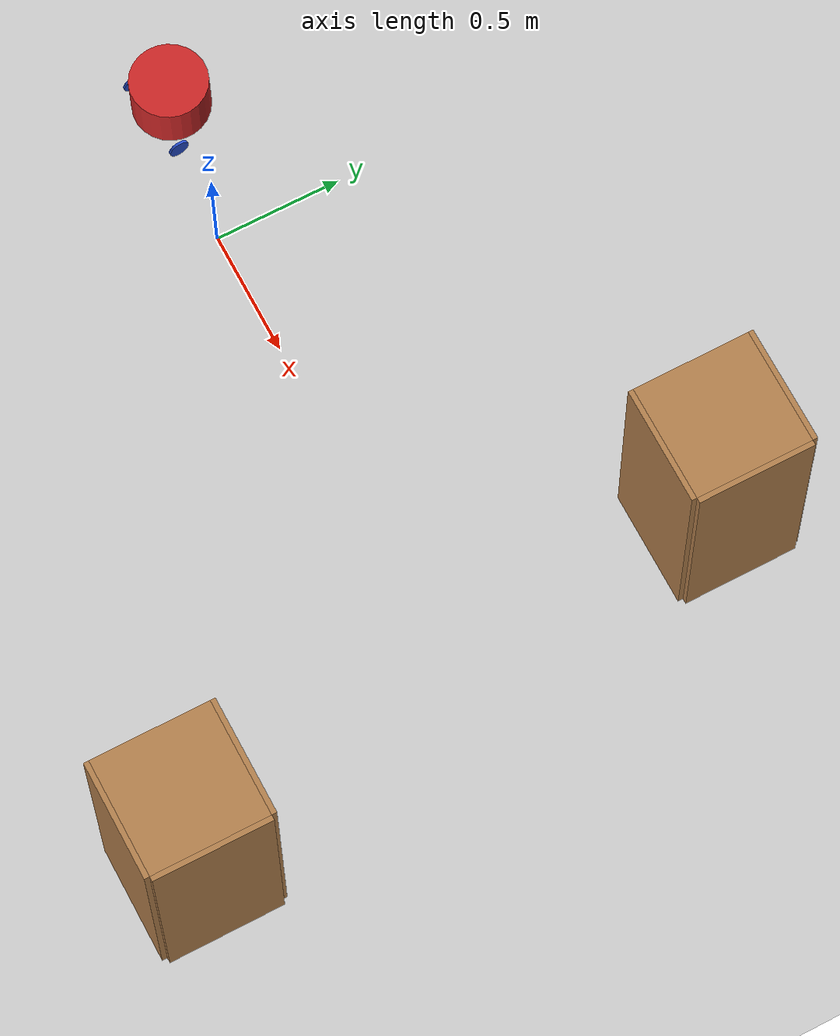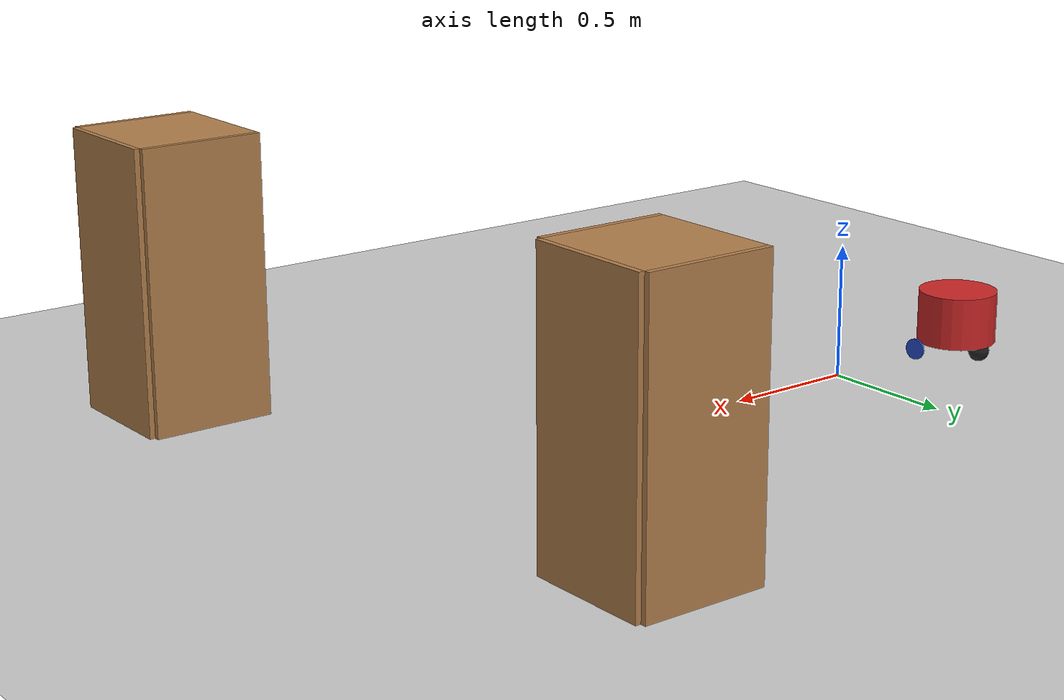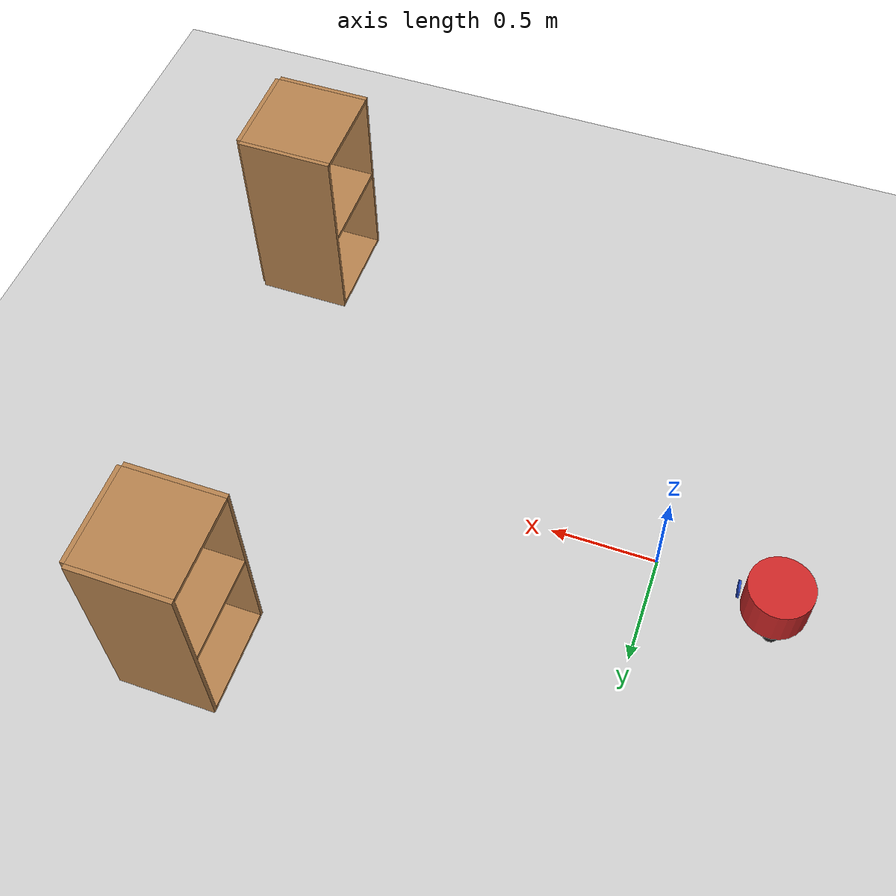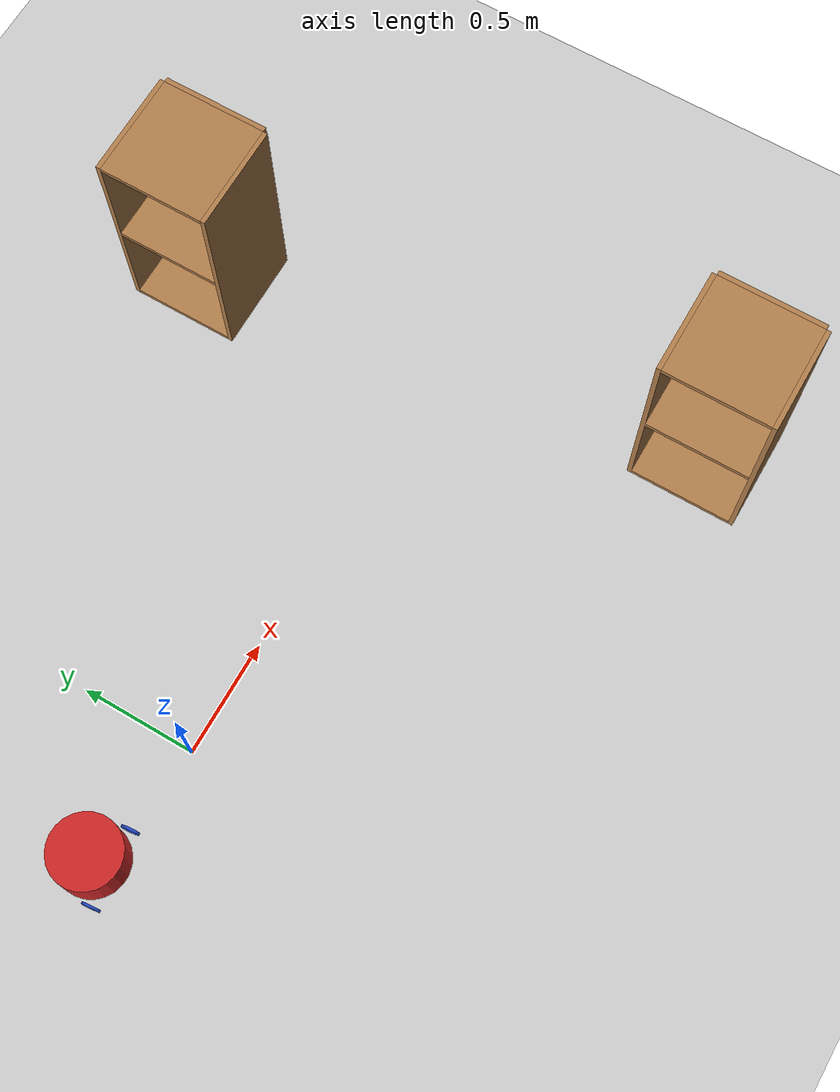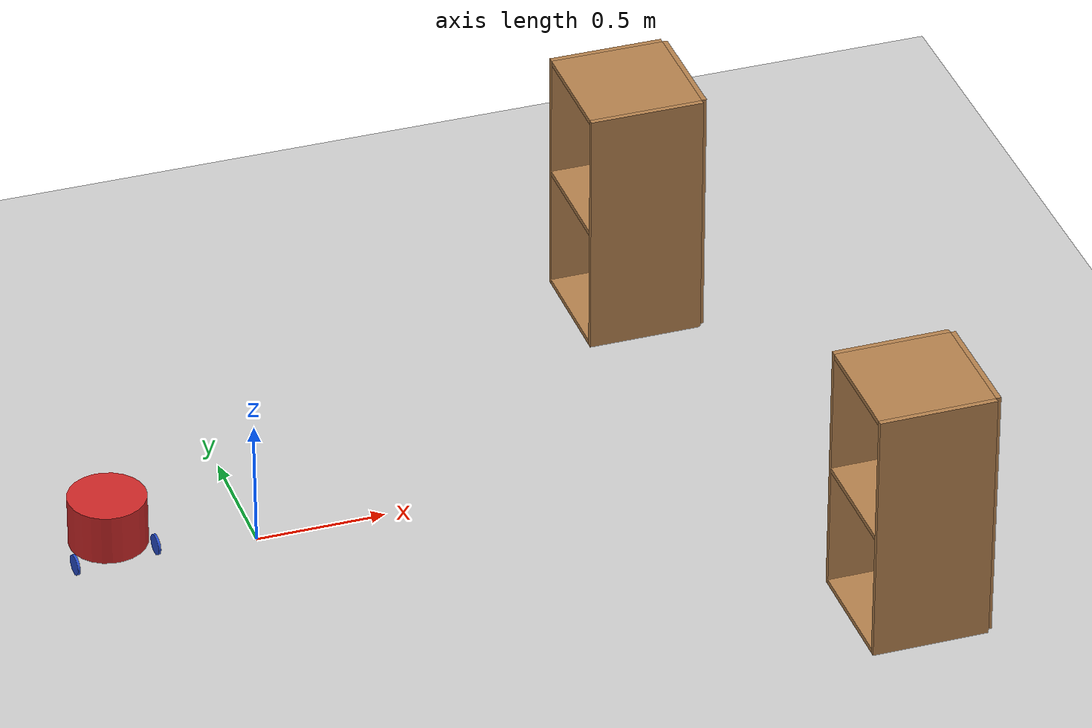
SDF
<sdf version="1.7">
 <world name="default">
  <light name="sun" type="directional">
   <pose>0 0 10 0 -0 0</pose>
   <diffuse>0.8 0.8 0.8 1</diffuse>
   <specular>0.2 0.2 0.2 1</specular>
   <attenuation>
    <range>1000</range>
    <constant>0.9</constant>
    <linear>0.01</linear>
    <quadratic>0.001</quadratic>
   </attenuation>
   <direction>-0.5 0.1 -0.9</direction>
   <spot><inner_angle>0</inner_angle><outer_angle>0</outer_angle><falloff>0</falloff></spot>
  </light>
  <model name="ground_plane">
   <static>1</static>
   <link name="link">
    <collision name="collision">
     <geometry><plane><normal>0 0 1</normal><size>100 100</size></plane></geometry>
     <surface>
      <contact><collide_bitmask>65535</collide_bitmask></contact>
      <friction><ode><mu>100</mu><mu2>50</mu2></ode></friction>
     </surface>
    </collision>
    <visual name="visual">
     <cast_shadows>0</cast_shadows>
     <geometry><plane><normal>0 0 1</normal><size>100 100</size></plane></geometry>
     <material>
      <script><uri>file://media/materials/scripts/gazebo.material</uri><name>Gazebo/Grey</name></script>
     </material>
    </visual>
   </link>
  </model>
  <gravity>0 0 -9.8</gravity>
  <magnetic_field>6e-06 2.3e-05 -4.2e-05</magnetic_field>
  <atmosphere type="adiabatic"/>
  <physics type="ode">
   <max_step_size>0.001</max_step_size>
   <real_time_factor>1</real_time_factor>
   <real_time_update_rate>1000</real_time_update_rate>
  </physics>
  <scene><ambient>0.4 0.4 0.4 1</ambient><background>0.7 0.7 0.7 1</background><shadows>1</shadows></scene>
  <audio><device>default</device></audio>
  <spherical_coordinates>
   <surface_model>EARTH_WGS84</surface_model>
   <latitude_deg>0</latitude_deg>
   <longitude_deg>0</longitude_deg>
   <elevation>0</elevation>
   <heading_deg>0</heading_deg>
  </spherical_coordinates>
  <model name="my_bot">
   <link name="base_link">
    <inertial>
     <pose>0.04 0 0.071667 0 -0 0</pose>
     <mass>0.3</mass>
     <inertia>
      <ixx>0.00333733</ixx>
      <ixy>0</ixy>
      <ixz>0.00063</ixz>
      <iyy>0.00677733</iyy>
      <iyz>0</iyz>
      <izz>0.004754</izz>
     </inertia>
    </inertial>
    <collision name="base_link_fixed_joint_lump__caster_wheel_collision">
     <pose>0.18 0 0 0 -0 0</pose>
     <geometry><sphere><radius>0.04</radius></sphere></geometry>
     <surface><friction><ode><mu>0.001</mu><mu2>0.001</mu2></ode></friction></surface>
    </collision>
    <collision name="base_link_fixed_joint_lump__chassis_collision_1">
     <pose>0.07 0 0.12 0 -0 0</pose>
     <geometry><cylinder><length>0.2</length><radius>0.15</radius></cylinder></geometry>
    </collision>
    <collision name="base_link_fixed_joint_lump__laser_frame_collision_2">
     <pose>0.02 0 0.195 0 -0 0</pose>
     <geometry><cylinder><length>0.04</length><radius>0.05</radius></cylinder></geometry>
    </collision>
    <visual name="base_link_fixed_joint_lump__caster_wheel_visual">
     <pose>0.18 0 0 0 -0 0</pose>
     <geometry><sphere><radius>0.04</radius></sphere></geometry>
     <material>
      <script><name>Gazebo/Black</name><uri>file://media/materials/scripts/gazebo.material</uri></script>
     </material>
    </visual>
    <visual name="base_link_fixed_joint_lump__chassis_visual_1">
     <pose>0.07 0 0.12 0 -0 0</pose>
     <geometry><cylinder><length>0.2</length><radius>0.15</radius></cylinder></geometry>
     <material>
      <script><name>Gazebo/Red</name><uri>file://media/materials/scripts/gazebo.material</uri></script>
     </material>
    </visual>
    <visual name="base_link_fixed_joint_lump__laser_frame_visual_2">
     <pose>0.02 0 0.195 0 -0 0</pose>
     <geometry><cylinder><length>0.04</length><radius>0.05</radius></cylinder></geometry>
     <material>
      <script><name>Gazebo/Red</name><uri>file://media/materials/scripts/gazebo.material</uri></script>
     </material>
    </visual>
    <sensor name="laser" type="ray">
     <visualize>1</visualize>
     <update_rate>10</update_rate>
     <ray>
      <scan>
       <horizontal>
        <samples>360</samples>
        <min_angle>-3.14</min_angle>
        <max_angle>3.14</max_angle>
        <resolution>1</resolution>
       </horizontal>
       <vertical><samples>1</samples><min_angle>0</min_angle><max_angle>0</max_angle></vertical>
      </scan>
      <range><min>0.3</min><max>12</max></range>
     </ray>
     <plugin name="laser_controller" filename="libgazebo_ros_ray_sensor.so">
      <ros><argument>~/out:=scan</argument></ros>
      <output_type>sensor_msgs/LaserScan</output_type>
      <frame_name>laser_frame</frame_name>
     </plugin>
     <pose>0.02 0 0.195 0 -0 0</pose>
    </sensor>
   </link>
   <joint name="left_wheel_joint" type="revolute">
    <pose relative_to="base_link">0 0.16 0 -1.5708 0 0</pose>
    <parent>base_link</parent>
    <child>left_wheel</child>
    <axis>
     <xyz>0 0 1</xyz>
     <limit><lower>-1e+16</lower><upper>1e+16</upper></limit>
     <dynamics><spring_reference>0</spring_reference><spring_stiffness>0</spring_stiffness></dynamics>
    </axis>
   </joint>
   <link name="left_wheel">
    <pose relative_to="left_wheel_joint">0 0 0 0 -0 0</pose>
    <inertial>
     <mass>0.1</mass>
     <inertia>
      <ixx>4.08333e-05</ixx>
      <ixy>0</ixy>
      <ixz>0</ixz>
      <iyy>4.08333e-05</iyy>
      <iyz>0</iyz>
      <izz>8e-05</izz>
     </inertia>
    </inertial>
    <collision name="left_wheel_collision">
     <geometry><cylinder><length>0.01</length><radius>0.04</radius></cylinder></geometry>
    </collision>
    <visual name="left_wheel_visual">
     <geometry><cylinder><length>0.01</length><radius>0.04</radius></cylinder></geometry>
     <material>
      <script><name>Gazebo/Blue</name><uri>file://media/materials/scripts/gazebo.material</uri></script>
     </material>
    </visual>
   </link>
   <joint name="right_wheel_joint" type="revolute">
    <pose relative_to="base_link">0 -0.16 0 1.5708 -0 0</pose>
    <parent>base_link</parent>
    <child>right_wheel</child>
    <axis>
     <xyz>0 0 -1</xyz>
     <limit><lower>-1e+16</lower><upper>1e+16</upper></limit>
     <dynamics><spring_reference>0</spring_reference><spring_stiffness>0</spring_stiffness></dynamics>
    </axis>
   </joint>
   <link name="right_wheel">
    <pose relative_to="right_wheel_joint">0 0 0 0 -0 0</pose>
    <inertial>
     <mass>0.1</mass>
     <inertia>
      <ixx>4.08333e-05</ixx>
      <ixy>0</ixy>
      <ixz>0</ixz>
      <iyy>4.08333e-05</iyy>
      <iyz>0</iyz>
      <izz>8e-05</izz>
     </inertia>
    </inertial>
    <collision name="right_wheel_collision">
     <geometry><cylinder><length>0.01</length><radius>0.04</radius></cylinder></geometry>
    </collision>
    <visual name="right_wheel_visual">
     <geometry><cylinder><length>0.01</length><radius>0.04</radius></cylinder></geometry>
     <material>
      <script><name>Gazebo/Blue</name><uri>file://media/materials/scripts/gazebo.material</uri></script>
     </material>
    </visual>
   </link>
   <static>0</static>
   <plugin name="gazebo_ros2_control" filename="libgazebo_ros2_control.so">
    <parameters>/home/robot/dev_ws/install/rsk_bot/share/rsk_bot/config/my_controllers.yaml</parameters>
    <parameters>/home/robot/dev_ws/install/rsk_bot/share/rsk_bot/config/gaz_ros2_ctl_use_sim.yaml</parameters>
   </plugin>
   <pose>-0.538239 0.017235 0.04 0 -0 1.66882</pose>
  </model>
  <model name="cabinet">
   <static>1</static>
   <link name="cabinet_bottom_plate">
    <inertial>
     <pose>0 0 -1 0 -0 0</pose>
     <inertia><ixx>2.05</ixx><ixy>0</ixy><ixz>0</ixz><iyy>2.05</iyy><iyz>0</iyz><izz>2.05</izz></inertia>
     <mass>25</mass>
    </inertial>
    <collision name="cabinet_bottom_plate_geom">
     <pose>0 0 0.01 0 -0 0</pose>
     <geometry><box><size>0.45 0.45 0.02</size></box></geometry>
    </collision>
    <visual name="cabinet_bottom_plate_geom_visual">
     <pose>0 0 0.01 0 -0 0</pose>
     <geometry><box><size>0.45 0.45 0.02</size></box></geometry>
     <material>
      <script><uri>file://media/materials/scripts/gazebo.material</uri><name>Gazebo/Wood</name></script>
     </material>
    </visual>
    <collision name="cabinet_bottom_plate_geom_cabinet_back_plate">
     <pose>0.235 0 0.51 0 -0 0</pose>
     <geometry><box><size>0.02 0.45 1.02</size></box></geometry>
    </collision>
    <visual name="cabinet_bottom_plate_geom_cabinet_back_plate_visual">
     <pose>0.235 0 0.51 0 -0 0</pose>
     <geometry><box><size>0.02 0.45 1.02</size></box></geometry>
     <material>
      <script><uri>file://media/materials/scripts/gazebo.material</uri><name>Gazebo/Wood</name></script>
     </material>
    </visual>
    <collision name="cabinet_bottom_plate_geom_cabinet_left_plate">
     <pose>0 0.235 0.51 0 -0 0</pose>
     <geometry><box><size>0.45 0.02 1.02</size></box></geometry>
    </collision>
    <visual name="cabinet_bottom_plate_geom_cabinet_left_plate_visual">
     <pose>0 0.235 0.51 0 -0 0</pose>
     <geometry><box><size>0.45 0.02 1.02</size></box></geometry>
     <material>
      <script><uri>file://media/materials/scripts/gazebo.material</uri><name>Gazebo/Wood</name></script>
     </material>
    </visual>
    <collision name="cabinet_bottom_plate_geom_cabinet_middle_plate">
     <pose>0 0 0.51 0 -0 0</pose>
     <geometry><box><size>0.45 0.45 0.02</size></box></geometry>
    </collision>
    <visual name="cabinet_bottom_plate_geom_cabinet_middle_plate_visual">
     <pose>0 0 0.51 0 -0 0</pose>
     <geometry><box><size>0.45 0.45 0.02</size></box></geometry>
     <material>
      <script><uri>file://media/materials/scripts/gazebo.material</uri><name>Gazebo/Wood</name></script>
     </material>
    </visual>
    <collision name="cabinet_bottom_plate_geom_cabinet_right_plate">
     <pose>0 -0.235 0.51 0 -0 0</pose>
     <geometry><box><size>0.45 0.02 1.02</size></box></geometry>
    </collision>
    <visual name="cabinet_bottom_plate_geom_cabinet_right_plate_visual">
     <pose>0 -0.235 0.51 0 -0 0</pose>
     <geometry><box><size>0.45 0.02 1.02</size></box></geometry>
     <material>
      <script><uri>file://media/materials/scripts/gazebo.material</uri><name>Gazebo/Wood</name></script>
     </material>
    </visual>
    <collision name="cabinet_bottom_plate_geom_cabinet_top_plate">
     <pose>0 0 1.01 0 -0 0</pose>
     <geometry><box><size>0.45 0.45 0.02</size></box></geometry>
    </collision>
    <visual name="cabinet_bottom_plate_geom_cabinet_top_plate_visual">
     <pose>0 0 1.01 0 -0 0</pose>
     <geometry><box><size>0.45 0.45 0.02</size></box></geometry>
     <material>
      <script><uri>file://media/materials/scripts/gazebo.material</uri><name>Gazebo/Wood</name></script>
     </material>
    </visual>
   </link>
   <pose>2.13496 -1.16924 0 0 -0 0</pose>
  </model>
  <model name="cabinet_clone">
   <static>1</static>
   <link name="cabinet_bottom_plate">
    <inertial>
     <pose>0 0 -1 0 -0 0</pose>
     <inertia><ixx>2.05</ixx><ixy>0</ixy><ixz>0</ixz><iyy>2.05</iyy><iyz>0</iyz><izz>2.05</izz></inertia>
     <mass>25</mass>
    </inertial>
    <collision name="cabinet_bottom_plate_geom">
     <pose>0 0 0.01 0 -0 0</pose>
     <geometry><box><size>0.45 0.45 0.02</size></box></geometry>
    </collision>
    <visual name="cabinet_bottom_plate_geom_visual">
     <pose>0 0 0.01 0 -0 0</pose>
     <geometry><box><size>0.45 0.45 0.02</size></box></geometry>
     <material>
      <script><uri>file://media/materials/scripts/gazebo.material</uri><name>Gazebo/Wood</name></script>
     </material>
    </visual>
    <collision name="cabinet_bottom_plate_geom_cabinet_back_plate">
     <pose>0.235 0 0.51 0 -0 0</pose>
     <geometry><box><size>0.02 0.45 1.02</size></box></geometry>
    </collision>
    <visual name="cabinet_bottom_plate_geom_cabinet_back_plate_visual">
     <pose>0.235 0 0.51 0 -0 0</pose>
     <geometry><box><size>0.02 0.45 1.02</size></box></geometry>
     <material>
      <script><uri>file://media/materials/scripts/gazebo.material</uri><name>Gazebo/Wood</name></script>
     </material>
    </visual>
    <collision name="cabinet_bottom_plate_geom_cabinet_left_plate">
     <pose>0 0.235 0.51 0 -0 0</pose>
     <geometry><box><size>0.45 0.02 1.02</size></box></geometry>
    </collision>
    <visual name="cabinet_bottom_plate_geom_cabinet_left_plate_visual">
     <pose>0 0.235 0.51 0 -0 0</pose>
     <geometry><box><size>0.45 0.02 1.02</size></box></geometry>
     <material>
      <script><uri>file://media/materials/scripts/gazebo.material</uri><name>Gazebo/Wood</name></script>
     </material>
    </visual>
    <collision name="cabinet_bottom_plate_geom_cabinet_middle_plate">
     <pose>0 0 0.51 0 -0 0</pose>
     <geometry><box><size>0.45 0.45 0.02</size></box></geometry>
    </collision>
    <visual name="cabinet_bottom_plate_geom_cabinet_middle_plate_visual">
     <pose>0 0 0.51 0 -0 0</pose>
     <geometry><box><size>0.45 0.45 0.02</size></box></geometry>
     <material>
      <script><uri>file://media/materials/scripts/gazebo.material</uri><name>Gazebo/Wood</name></script>
     </material>
    </visual>
    <collision name="cabinet_bottom_plate_geom_cabinet_right_plate">
     <pose>0 -0.235 0.51 0 -0 0</pose>
     <geometry><box><size>0.45 0.02 1.02</size></box></geometry>
    </collision>
    <visual name="cabinet_bottom_plate_geom_cabinet_right_plate_visual">
     <pose>0 -0.235 0.51 0 -0 0</pose>
     <geometry><box><size>0.45 0.02 1.02</size></box></geometry>
     <material>
      <script><uri>file://media/materials/scripts/gazebo.material</uri><name>Gazebo/Wood</name></script>
     </material>
    </visual>
    <collision name="cabinet_bottom_plate_geom_cabinet_top_plate">
     <pose>0 0 1.01 0 -0 0</pose>
     <geometry><box><size>0.45 0.45 0.02</size></box></geometry>
    </collision>
    <visual name="cabinet_bottom_plate_geom_cabinet_top_plate_visual">
     <pose>0 0 1.01 0 -0 0</pose>
     <geometry><box><size>0.45 0.45 0.02</size></box></geometry>
     <material>
      <script><uri>file://media/materials/scripts/gazebo.material</uri><name>Gazebo/Wood</name></script>
     </material>
    </visual>
   </link>
   <pose>1.81538 1.06058 0 0 -0 0</pose>
  </model>
 </world>
</sdf>
